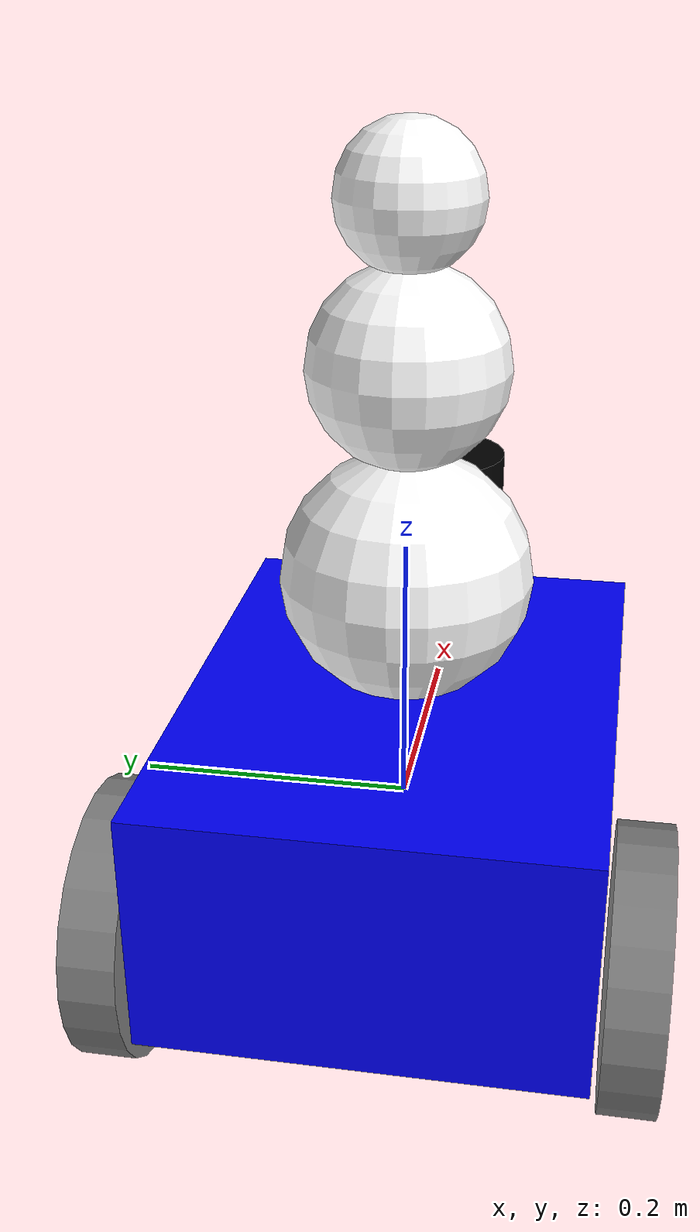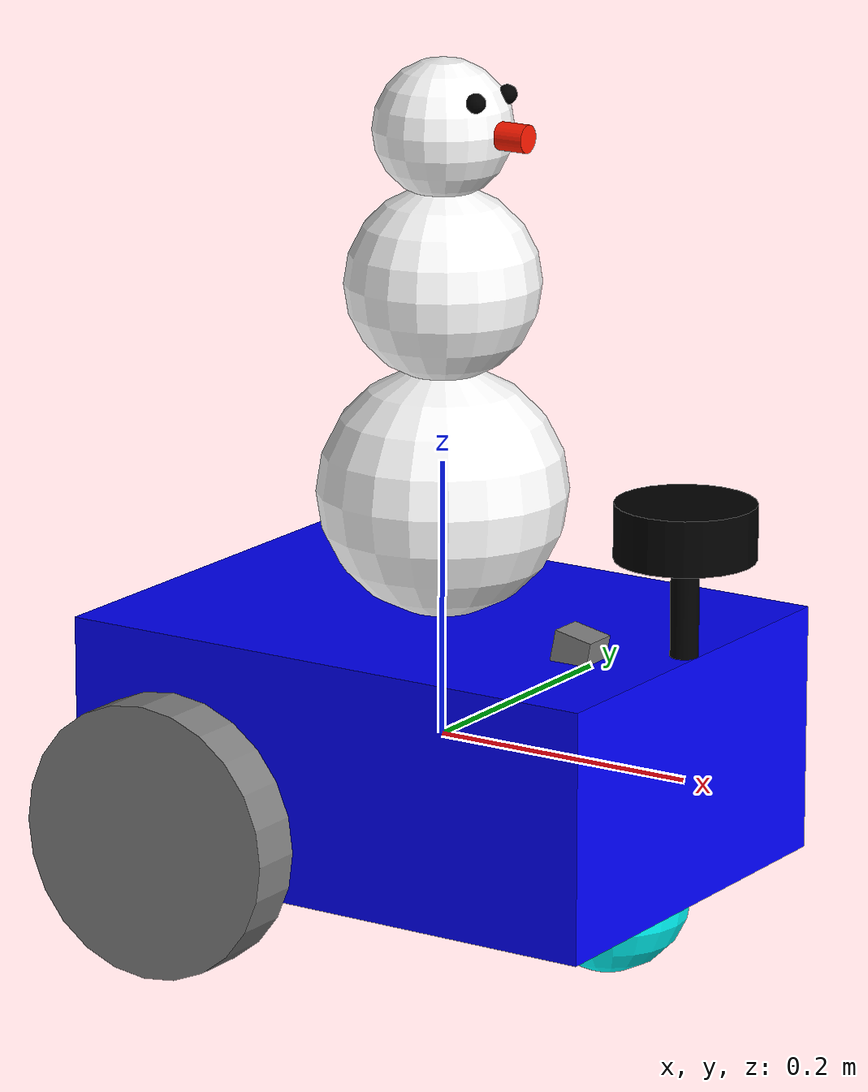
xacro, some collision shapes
<?xml version="1.0"?>
<robot name='robot' xmlns:xacro="http://ros.org/eiki/xacro">

    <xacro:include filename="$(find robot_description)/urdf/gazebo.urdf.xacro" />
    <xacro:include filename="$(find robot_description)/urdf/robot_lidar.urdf.xacro" />
    <xacro:include filename="$(find robot_description)/urdf/depth.urdf.xacro" />
    <xacro:include filename="imu.urdf.xacro" />
    <!-- Robot properites -->
    <xacro:property name="base_width" value="0.31"/>
    <xacro:property name="base_length" value="0.42"/>
    <xacro:property name="base_height" value="0.18"/>

    <xacro:property name="wheel_radius" value="0.10"/>
    <xacro:property name="wheel_width" value="0.04"/>
    <xacro:property name="wheel_ygap" value="0.025"/>
    <xacro:property name="wheel_zoff" value="0.05"/>
    <xacro:property name="wheel_xoff" value="0.12"/>

    <xacro:property name="caster_xoff" value="0.14"/>

    <!-- Inertial properties -->
    <xacro:macro name="box_inertia" params="m w h d">
        <inertial>
              <origin xyz="0 0 0" rpy="${pi/2} 0 ${pi/2}"/>
              <mass value="${m}"/>
              <inertia ixx="${(m/12) * (h*h + d*d)}" ixy="0.0" ixz="0.0" iyy="${(m/12) * (w*w + d*d)}" iyz="0.0" izz="${(m/12) * (w*w + h*h)}"/>
        </inertial>
    </xacro:macro>

    <xacro:macro name="cylinder_inertia" params="m r h">
        <inertial>
            <origin xyz="0 0 0" rpy="${pi/2} 0 0" />
            <mass value="${m}"/>
            <inertia ixx="${(m/12) * (3*r*r + h*h)}" ixy = "0" ixz = "0" iyy="${(m/12) * (3*r*r + h*h)}" iyz = "0" izz="${(m/2) * (r*r)}"/>
        </inertial>
    </xacro:macro>

    <xacro:macro name="sphere_inertia" params="m r">
        <inertial>
            <mass value="${m}"/>
            <inertia ixx="${(2/5) * m * (r*r)}" ixy="0.0" ixz="0.0" iyy="${(2/5) * m * (r*r)}" iyz="0.0" izz="${(2/5) * m * (r*r)}"/>
        </inertial>
    </xacro:macro>

    <!-- Robot Base -->
    <link name="base_link">
        <visual>
            <geometry>
                <box size="${base_length} ${base_width} ${base_height}"/>
            </geometry>
            <material name="blue">
                <color rgba="0 0 1.0 1.0"/>
            </material>
        </visual>

        <collision>
            <geometry>
                <box size="${base_length} ${base_width} ${base_height}"/>
            </geometry>
        </collision>

        <xacro:box_inertia m="12" w="${base_width}" d="${base_length}" h="${base_height}"/>
    </link>

    <xacro:macro name="snowman_sphere" params="prefix parent r m h">
        <link name="${prefix}_link">
            <visual>
                <geometry>
                    <sphere radius="${r}"/>
                </geometry>
                <material name="White">
                    <color rgba="1.0 1.0 1.0 1.0"/>
                </material>
            </visual>
            <collision>
                <geometry>
                    <sphere radius="${r}"/>
                </geometry>
            </collision>
            <xacro:sphere_inertia m="${m}" r="${r}"/>
        </link>

        <joint name="${prefix}_joint" type="fixed">
            <parent link="${parent}"/>
            <child link="${prefix}_link"/>
            <origin xyz="0 0 ${h}" rpy="0 0 0"/>
        </joint>
    </xacro:macro>

    <xacro:snowman_sphere prefix="lower_sphere" parent="base_link" r="0.09" m="2" h="${base_height}"/>
    <xacro:snowman_sphere prefix="middle_sphere" parent="lower_sphere_link" r="0.07" m="1.5" h="${0.09+0.06}"/>
    <xacro:snowman_sphere prefix="top_sphere" parent="middle_sphere_link" r="0.05" m="0.7" h="${0.07+0.04}"/>

    <link name="nose_link">
        <visual>
            <geometry>
                <cylinder radius="0.01" length="0.05"/>
            </geometry>
            <material name="Orange">
                <color rgba="1.0 0.1 0.0 1.0"/>
            </material>
        </visual>
        <collision>
            <geometry>
                <cylinder radius="0.01" length="0.2"/>
            </geometry>
        </collision>
        <xacro:cylinder_inertia m="0.4" r="0.01" h="0.05"/>
    </link>

    <joint name="nose_joint" type="fixed">
        <parent link="top_sphere_link"/>
        <child link="nose_link"/>
        <origin xyz="0.045 0 0" rpy="0 ${pi/2} 0"/>
    </joint>

    <xacro:macro name="snowman_eye" params="prefix parent s">
        <link name="${prefix}_link">
            <visual>
                <geometry>
                    <sphere radius="0.007"/>
                </geometry>
                <material name="Black">
                    <color rgba="0.0 0.0 0.0 1.0"/>
                </material>
            </visual>
            <collision>
                <geometry>
                    <sphere radius="0.007"/>
                </geometry>
            </collision>
            <xacro:sphere_inertia m="0.01" r="0.007"/>
        </link>

        <joint name="${prefix}_joint" type="fixed">
            <parent link="${parent}"/>
            <child link="${prefix}_link"/>
            <origin xyz="0.04 ${s} 0.025" rpy="0 0 0"/>
        </joint>
    </xacro:macro>

    <xacro:snowman_eye prefix="left_eye" parent="top_sphere_link" s="0.02"/>
    <xacro:snowman_eye prefix="right_eye" parent="top_sphere_link" s="-0.02"/>

    <link name="base_footprint"/>

    <joint name="base_joint" type="fixed">
        <parent link="base_link"/>
        <child link="base_footprint"/>
        <origin xyz="0.0 0.0 ${-(wheel_radius+wheel_zoff)}" rpy="0 0 0"/>
    </joint>

    <!-- Wheel macro -->
    <xacro:macro name="wheel" params="prefix x_reflect y_reflect">
        <link name="${prefix}_link">
            <visual>
                <origin xyz="0 0 0" rpy="${pi/2} 0 0"/>
                <geometry>
                    <cylinder radius="${wheel_radius}" length="${wheel_width}"/>
                </geometry>
                <material name="Gray">
                    <color rgba="0.5 0.5 0.5 1.0"/>
                </material>
            </visual>
            <collision>
                <origin xyz="0 0 0" rpy="${pi/2} 0 0"/>
                <geometry>
                    <cylinder radius="${wheel_radius}" length="${wheel_width}"/>
                </geometry>
            </collision>

            <xacro:cylinder_inertia m="1" r="${wheel_radius}" h="${wheel_width}"/>
        </link>

        <joint name="${prefix}_joint" type="continuous">
            <parent link="base_link"/>
            <child link="${prefix}_link"/>
            <origin xyz="${x_reflect*wheel_xoff} ${y_reflect*(base_width/2+wheel_ygap)} ${-wheel_zoff}" rpy="0 0 0"/>
            <axis xyz="0 1 0"/>
        </joint>
    </xacro:macro>

    <xacro:wheel prefix="drivewhl_l" x_reflect="-1" y_reflect="1"/>
    <xacro:wheel prefix="drivewhl_r" x_reflect="-1" y_reflect="-1"/>

    <!-- Front smaller wheel -->
    <link name="front_caster">
        <visual>
            <geometry>
                <sphere radius="${(wheel_radius+wheel_zoff-(base_height/2))}"/>
            </geometry>
            <material name="Cyan">
                <color rgba="0 1.0 1.0 1.0"/>
            </material>
        </visual>
        <collision>
            <origin xyz="0 0 0" rpy="0 0 0"/>
            <geometry>
                <sphere radius="${(wheel_radius+wheel_zoff-(base_height/2))}"/>
            </geometry>
        </collision>

        <xacro:sphere_inertia m="5" r="${(wheel_radius+wheel_zoff-(base_height/2))}"/>
    </link>

    <joint name="caster_joint" type="continuous">
        <parent link="base_link"/>
        <child link="front_caster"/>
        <origin xyz="${caster_xoff} 0.0 ${-(base_height/2)}" rpy="0 0 0"/>
        <axis xyz="1 0 0"/>
    </joint>

    <gazebo reference="front_caster">
        <material>Gazebo/White</material>
        <mu1 value="0.001"/>
        <mu2 value="0.001"/>
    </gazebo>

</robot>

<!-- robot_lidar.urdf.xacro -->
<robot xmlns:xacro="http://www.ros.org/wiki/xacro">

    <joint name="laser_joint" type="fixed">
        <parent link="base_link"/>
        <child link="laser_frame"/>
        <origin xyz="0.2 0 0.18" rpy="0 0 0"/>
    </joint>

    <link name="laser_frame">
        <visual>
            <geometry>
                <cylinder radius="0.05" length="0.04"/>
            </geometry>
            <material name="Black">
                <color rgba="0 0 0 1.0"/>
            </material>
        </visual>
        <visual>
            <origin xyz="0 0 -0.05"/>
            <geometry>
                <cylinder radius="0.01" length="0.1"/>
            </geometry>
            <material name="Black">
                <color rgba="0 0 0 1.0"/>
            </material>
        </visual>
        <collision>
            <geometry>
                <cylinder radius="0.05" length="0.04"/>
            </geometry>
        </collision>
        <inertial>
            <origin xyz="0 0 0" rpy="0 0 0"/>
            <mass value="0.1" />
            <inertia ixx="${(1/12) * 0.1 * (3*0.05*0.05 + 0.04*0.04)}" ixy="0.0" ixz="0.0"
                     iyy="${(1/12) * 0.1 * (3*0.05*0.05 + 0.04*0.04)}" iyz="0.0"
                     izz="${(1/2) * 0.1 * (0.05*0.05)}" />
        </inertial>
    </link>

    <gazebo reference="laser_frame">
        <material>Gazebo/Black</material>

        <sensor name='laser_sensor_frame' type='gpu_lidar'>"
            <gz_frame_id>robot/laser_frame</gz_frame_id>
            <pose> 0 0 0 0 0 0 </pose>
            <visualize>true</visualize>
            <always_on>true</always_on>
            <update_rate>10</update_rate>
            <ray>
                <scan>
                    <horizontal>
                        <samples>360</samples>
                        <min_angle>-3.14</min_angle>
                        <max_angle>3.14</max_angle>
                    </horizontal>
                </scan>
                <range>
                    <min>0.3</min>
                    <max>12</max>
                </range>
                <noise>
                    <type>gaussian</type>
                    <mean>0.0</mean>
                    <stddev>0.007</stddev>
                </noise>
            </ray>
        </sensor>
    </gazebo>
</robot>

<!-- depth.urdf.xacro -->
<robot xmlns:xacro="http://www.ros.org/wiki/xacro">

    <xacro:property name="M_PI" value="3.1415926535897931" />
    <xacro:property name="offset_x" value="-0.08" />
    <xacro:property name="offset_y" value="0" />
    <xacro:property name="offset_z" value="0.28" />

    <joint name="depth_joint" type="fixed">
        <parent link="base_link"/>
        <child link="depth_frame"/>
        <origin xyz="0.13 0 0.05" rpy="0 0.2 0"/>
    </joint>

    <material name="aluminum">
      <color rgba="0.5 0.5 0.5 1"/>
    </material>

    <link name="depth_frame">
        <visual>
            <origin xyz="${offset_x} ${offset_y} ${offset_z}" rpy="${M_PI/2} 0 ${M_PI/2}"/>
            <geometry>
                <mesh filename="file://$(find robot_description)/urdf/d455.stl" scale="0.001 0.001 0.001"/>
                <!--box size="0.026 0.124 0.029"/-->
            </geometry>
            <material name="aluminum"/>
        </visual>
        <collision>
            <origin xyz="0.00465 -0.0475 0" rpy="${M_PI/2} 0 ${M_PI/2}"/>
            <geometry>
                <box size="0.026 0.124 0.029"/>
            </geometry>
        </collision>
        <inertial>
            <origin xyz="0 0 0" rpy="0 0 0"/>
            <mass value="0.116" />
            <inertia ixx="${(1/12) * 0.116 * (0.026*0.026+0.029*0.029)}" ixy="0.0" ixz="0.0"
                     iyy="${(1/12) * 0.116 * (0.124*0.124+0.029*0.029)}" iyz="0.0"
                     izz="${(1/12) * 0.116 * (0.124*0.124+0.026*0.026)}" />
        </inertial>
    </link>

    <gazebo reference="depth_frame">
        <sensor name='depth_sensor_frame' type='depth_camera'>"
            <gz_frame_id>robot/depth_frame</gz_frame_id>
            <pose> 0 0 0 0 0 0 </pose>
            <always_on>true</always_on>
            <update_rate>10</update_rate>
            <camera>
                <horizontal_fov>1.51843645</horizontal_fov>
                <image>
                    <width>848</width>
                    <height>480</height>
                    <format>R_FLOAT32</format>
                </image>
                <clip>
                    <near>0.1</near>
                    <far>10</far>
                </clip>
                <lens>
                    <intrinsics>
                    <fx>421.61578369140625</fx>
                    <fy>421.61578369140625</fy>
                    <cx>422.2854309082031</cx>
                    <cy>236.57237243652344</cy>
                    <s>0</s>
                    </intrinsics>
                </lens>
                <noise>
                    <type>gaussian</type>
                    <mean>0.0</mean>
                    <stddev>0.007</stddev>
                </noise>
            </camera>
        </sensor>
        <sensor name="color_sensor_frame" type="camera">
            <gz_frame_id>robot/depth_frame</gz_frame_id>
            <pose>0 0 0 0 0 0</pose>
            <update_rate>30</update_rate>
            <always_on>true</always_on>
            <camera>
                <horizontal_fov>1.20427718</horizontal_fov>
                <image>
                    <width>848</width>
                    <height>480</height>
                </image>
                <clip>
                    <near>0.1</near>
                    <far>50</far>
                </clip>
                <lens>
                    <intrinsics>
                    <fx>615.9603271484375</fx>
                    <fy>616.227294921875</fy>
                    <cx>419.83026123046875</cx>
                    <cy>245.1431427001953</cy>
                    <s>0</s>
                    </intrinsics>
                </lens>
            </camera>
        </sensor>
    </gazebo>
</robot>

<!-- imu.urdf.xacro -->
<robot xmlns:xacro="http://www.ros.org/wiki/xacro" name="imu">

    <joint name="imu_sensor_joint" type="fixed">
        <origin xyz="0.11 0.05 0.05" rpy="0 0 0"/>
        <parent link="base_link"/>
        <child link="imu_sensor_link"/>
    </joint>

    <link name="imu_sensor_link">
        <inertial>
        <origin xyz="0 0 0" rpy="0 0 0"/>
        <mass value="0.02" />
        <inertia ixx="${(1/12) * 0.01 * (0.2*0.2+0.5*0.5)}" ixy="0.0" ixz="0.0"
                 iyy="${(1/12) * 0.01 * (0.2*0.2+0.5*0.5)}" iyz="0.0"
                 izz="${(1/12) * 0.01 * (0.2*0.2+0.5*0.5)}" />
    </inertial>
    <visual>
        <origin xyz="0 0 0"/>
        <geometry>
            <box size="0.02 0.05 0.05"/>
        </geometry>
        <material name="Grey1">
			<color rgba="0.2 0.1 0.0 1.0"/>
		</material>
    </visual>
    <collision>
        <origin xyz="0 0 0"/>
        <geometry>
            <box size="0.02 0.05 0.05"/>
        </geometry>
    </collision>
    </link>

    <gazebo reference="imu_sensor_link">
        <gravity>true</gravity>
        <sensor name='imu_sensor' type='imu'>
            <always_on>true</always_on>
            <update_rate>1</update_rate>
            <visualize>true</visualize>
            <topic>imu</topic>
            <pose>0 0 0 0 0 0</pose>
        </sensor>
    </gazebo>

</robot>
